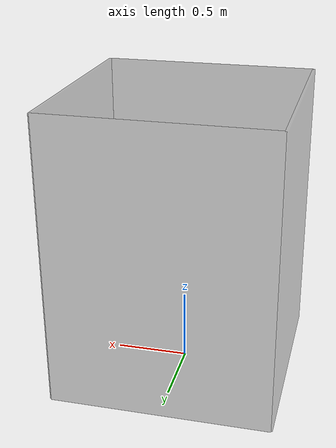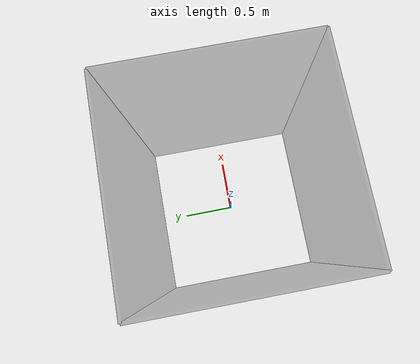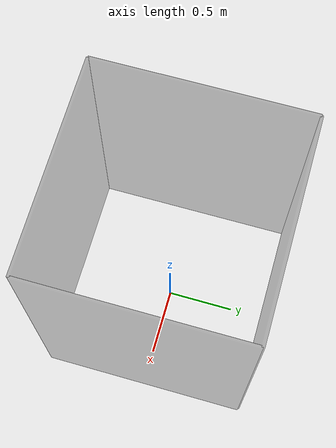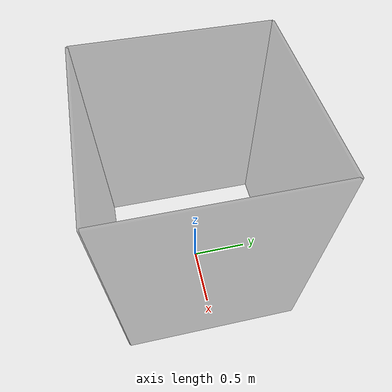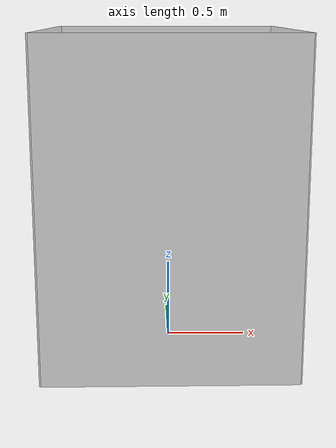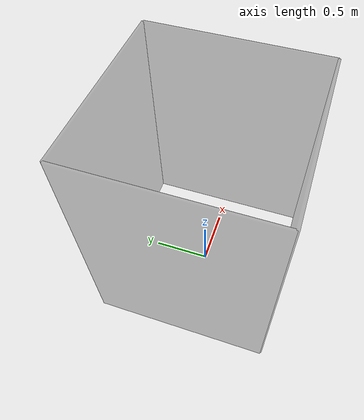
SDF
<sdf version="1.6">
 <world name="glovebox_aprilcube_world">
  <include><uri>model://sun</uri></include>
  <model name="glovebox_wall_front">
   <static>true</static>
   <link name="link">
    <visual name="visual">
     <geometry><box><size>1.5 0.02 2.0</size></box></geometry>
     <material>
      <ambient>0.1 0.1 0.1 0.3</ambient>
      <diffuse>0.1 0.1 0.1 0.3</diffuse>
      <specular>0.1 0.1 0.1 0.3</specular>
      <emissive>0 0 0 0.3</emissive>
     </material>
    </visual>
    <collision name="collision"><geometry><box><size>1.5 0.02 2.0</size></box></geometry></collision>
   </link>
   <pose>0 0.75 1.0 0 0 0</pose>
  </model>
  <model name="glovebox_wall_back">
   <static>true</static>
   <link name="link">
    <visual name="visual">
     <geometry><box><size>1.5 0.02 2.0</size></box></geometry>
     <material>
      <ambient>0.1 0.1 0.1 0.3</ambient>
      <diffuse>0.1 0.1 0.1 0.3</diffuse>
      <specular>0.1 0.1 0.1 0.3</specular>
      <emissive>0 0 0 0.3</emissive>
     </material>
    </visual>
    <collision name="collision"><geometry><box><size>1.5 0.02 2.0</size></box></geometry></collision>
   </link>
   <pose>0 -0.75 1.0 0 0 0</pose>
  </model>
  <model name="glovebox_wall_left">
   <static>true</static>
   <link name="link">
    <visual name="visual">
     <geometry><box><size>1.5 0.02 2.0</size></box></geometry>
     <material>
      <ambient>0.1 0.1 0.1 0.3</ambient>
      <diffuse>0.1 0.1 0.1 0.3</diffuse>
      <specular>0.1 0.1 0.1 0.3</specular>
      <emissive>0 0 0 0.3</emissive>
     </material>
    </visual>
    <collision name="collision"><geometry><box><size>1.5 0.02 2.0</size></box></geometry></collision>
   </link>
   <pose>-0.75 0 1.0 0 0 1.57</pose>
  </model>
  <model name="glovebox_wall_right">
   <static>true</static>
   <link name="link">
    <visual name="visual">
     <geometry><box><size>1.5 0.02 2.0</size></box></geometry>
     <material>
      <ambient>0.1 0.1 0.1 0.3</ambient>
      <diffuse>0.1 0.1 0.1 0.3</diffuse>
      <specular>0.1 0.1 0.1 0.3</specular>
      <emissive>0 0 0 0.3</emissive>
     </material>
    </visual>
    <collision name="collision"><geometry><box><size>1.5 0.02 2.0</size></box></geometry></collision>
   </link>
   <pose>0.75 0 1.0 0 0 1.57</pose>
  </model>
  <light name="point_light" type="point">
   <pose>0 0 2.5 0 0 0</pose>
   <diffuse>0.8 0.8 0.8 1</diffuse>
   <specular>0.2 0.2 0.2 1</specular>
   <attenuation>
    <range>20</range>
    <constant>0.5</constant>
    <linear>0.01</linear>
    <quadratic>0.001</quadratic>
   </attenuation>
   <cast_shadows>false</cast_shadows>
  </light>
 </world>
</sdf>
